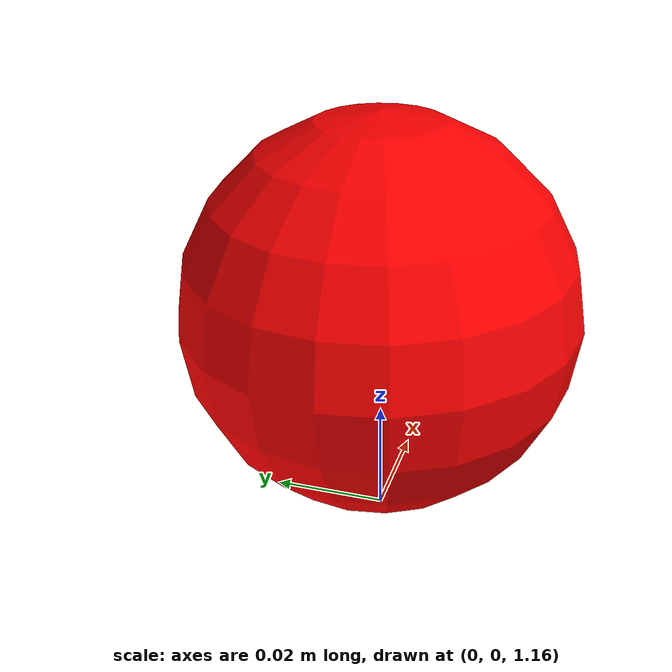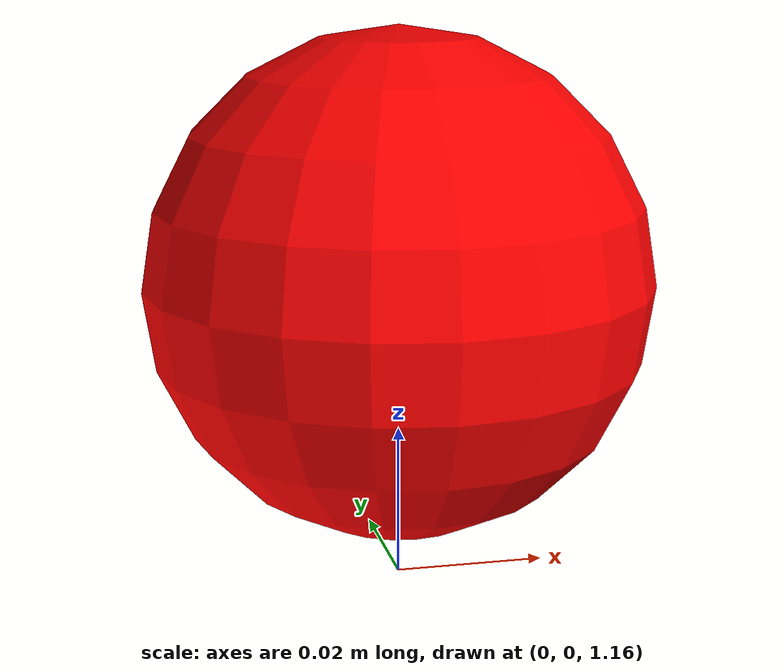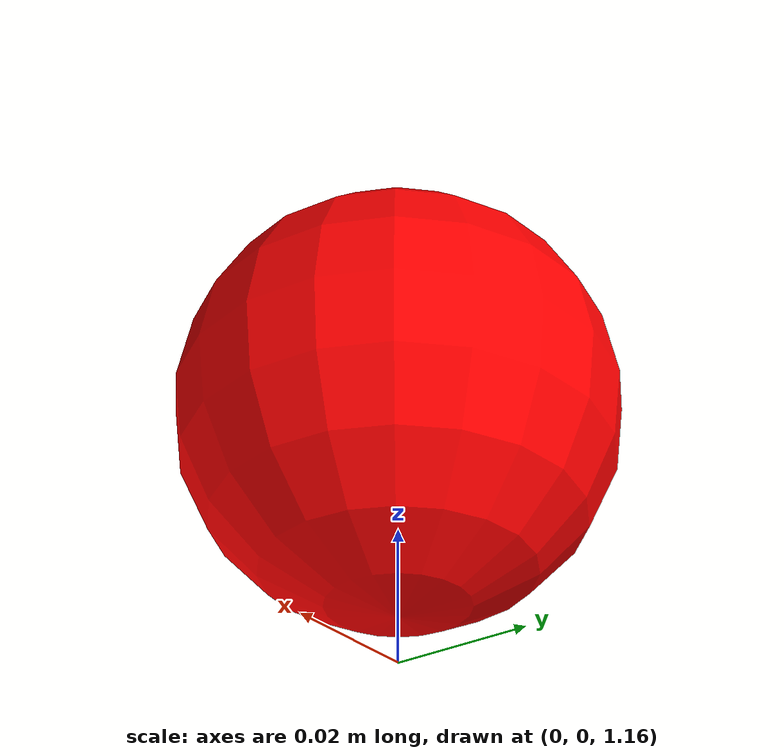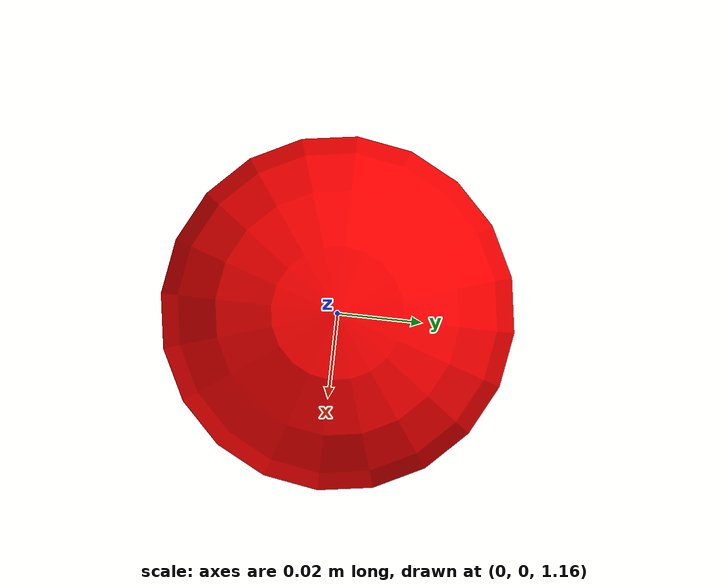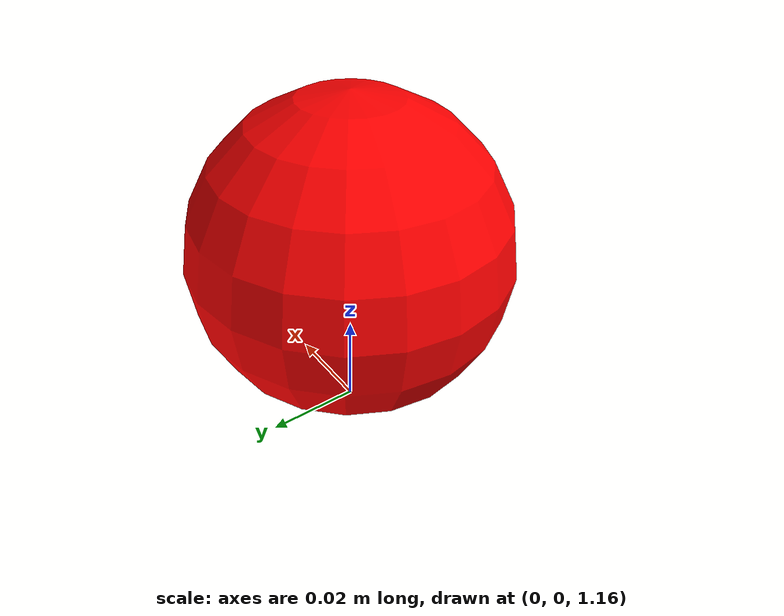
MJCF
<mujoco model="tennis_ball">
  <worldbody>
    <body name="tennis_ball" pos="0 0 1.2">
      <freejoint/>
      <geom
        name="tennis_ball_geom"
        type="sphere"
        size="0.0335"
        mass="0.057"
        rgba="1 0 0 1.0"
        condim="3"
        friction="0.20 0.01 0.001"
        solref="0.010 0.65"
        solimp="0.95 0.995 0.001 0.5 2"
        contype="1"
        conaffinity="14"
      />
      <site name="tennis_ball_center" pos="0 0 0" size="0.005"/>
    </body>
  </worldbody>
</mujoco>
